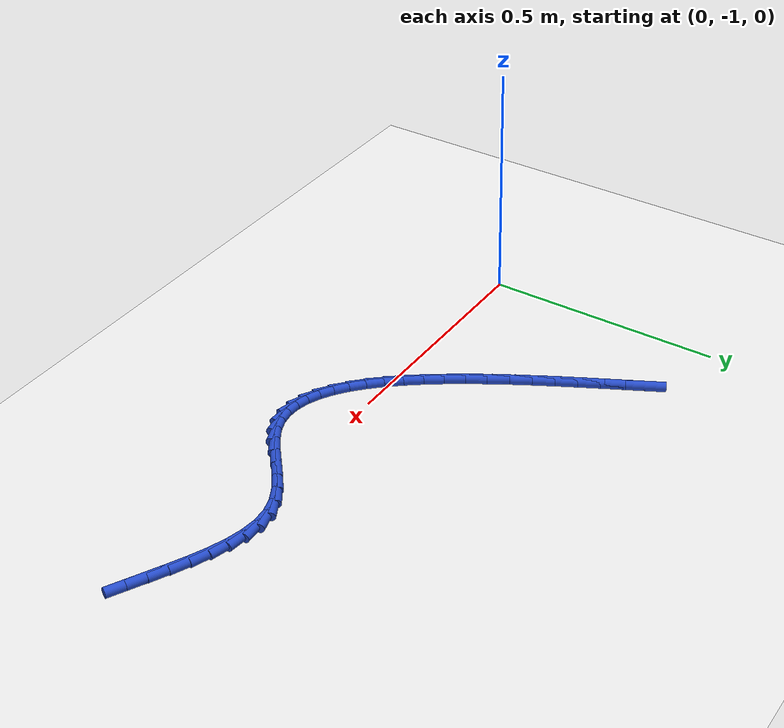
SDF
<sdf version="1.6">
 <world name="default">
  <model name="ground_plane">
   <static>1</static>
   <link name="link">
    <collision name="collision">
     <geometry><plane><normal>0 0 1</normal><size>100 100</size></plane></geometry>
     <surface><friction><ode><mu>100</mu><mu2>50</mu2></ode></friction></surface>
    </collision>
    <visual name="visual">
     <cast_shadows>0</cast_shadows>
     <geometry><plane><normal>0 0 1</normal><size>100 100</size></plane></geometry>
     <material>
      <script><uri>file://media/materials/scripts/gazebo.material</uri><name>Gazebo/WhiteGlow</name></script>
     </material>
    </visual>
   </link>
  </model>
  <model name="line">
   <link name="link_167">
    <pose>1.1373601821617456 -1.0560654046052782 0.01 0 1.57 -0.4908694466192165</pose>
    <collision name="collision">
     <geometry><cylinder><radius>0.01</radius><length>0.08</length></cylinder></geometry>
    </collision>
    <visual name="visual">
     <material>
      <script><name>Gazebo/Blue</name><uri>file://media/materials/scripts/gazebo.material</uri></script>
     </material>
     <geometry><cylinder><radius>0.01</radius><length>0.08</length></cylinder></geometry>
    </visual>
   </link>
   <link name="link_168">
    <pose>1.1040790828110867 -1.0382764748949014 0.01 0 1.57 -0.488861441878905</pose>
    <collision name="collision">
     <geometry><cylinder><radius>0.01</radius><length>0.08</length></cylinder></geometry>
    </collision>
    <visual name="visual">
     <material>
      <script><name>Gazebo/Blue</name><uri>file://media/materials/scripts/gazebo.material</uri></script>
     </material>
     <geometry><cylinder><radius>0.01</radius><length>0.08</length></cylinder></geometry>
    </visual>
   </link>
   <link name="link_169">
    <pose>1.070245193347285 -1.0202793307182478 0.01 0 1.57 -0.4698731065806249</pose>
    <collision name="collision">
     <geometry><cylinder><radius>0.01</radius><length>0.08</length></cylinder></geometry>
    </collision>
    <visual name="visual">
     <material>
      <script><name>Gazebo/Blue</name><uri>file://media/materials/scripts/gazebo.material</uri></script>
     </material>
     <geometry><cylinder><radius>0.01</radius><length>0.08</length></cylinder></geometry>
    </visual>
   </link>
   <link name="link_170">
    <pose>1.0360030288896354 -1.0028909448470966 0.01 0 1.57 -0.42765170814853537</pose>
    <collision name="collision">
     <geometry><cylinder><radius>0.01</radius><length>0.08</length></cylinder></geometry>
    </collision>
    <visual name="visual">
     <material>
      <script><name>Gazebo/Blue</name><uri>file://media/materials/scripts/gazebo.material</uri></script>
     </material>
     <geometry><cylinder><radius>0.01</radius><length>0.08</length></cylinder></geometry>
    </visual>
   </link>
   <link name="link_171">
    <pose>1.0016117151569217 -0.9872160078963601 0.01 0 1.57 -0.3587451610555444</pose>
    <collision name="collision">
     <geometry><cylinder><radius>0.01</radius><length>0.08</length></cylinder></geometry>
    </collision>
    <visual name="visual">
     <material>
      <script><name>Gazebo/Blue</name><uri>file://media/materials/scripts/gazebo.material</uri></script>
     </material>
     <geometry><cylinder><radius>0.01</radius><length>0.08</length></cylinder></geometry>
    </visual>
   </link>
   <link name="link_172">
    <pose>0.967331451840994 -0.9743619065772585 0.01 0 1.57 -0.2573914090754327</pose>
    <collision name="collision">
     <geometry><cylinder><radius>0.01</radius><length>0.08</length></cylinder></geometry>
    </collision>
    <visual name="visual">
     <material>
      <script><name>Gazebo/Blue</name><uri>file://media/materials/scripts/gazebo.material</uri></script>
     </material>
     <geometry><cylinder><radius>0.01</radius><length>0.08</length></cylinder></geometry>
    </visual>
   </link>
   <link name="link_173">
    <pose>0.9334224386337002 -0.965436027601009 0.01 0 1.57 -0.11637545998420795</pose>
    <collision name="collision">
     <geometry><cylinder><radius>0.01</radius><length>0.08</length></cylinder></geometry>
    </collision>
    <visual name="visual">
     <material>
      <script><name>Gazebo/Blue</name><uri>file://media/materials/scripts/gazebo.material</uri></script>
     </material>
     <geometry><cylinder><radius>0.01</radius><length>0.08</length></cylinder></geometry>
    </visual>
   </link>
   <link name="link_174">
    <pose>0.9001448752268921 -0.9615457576788313 0.01 0 1.57 0.06944695592646886</pose>
    <collision name="collision">
     <geometry><cylinder><radius>0.01</radius><length>0.08</length></cylinder></geometry>
    </collision>
    <visual name="visual">
     <material>
      <script><name>Gazebo/Blue</name><uri>file://media/materials/scripts/gazebo.material</uri></script>
     </material>
     <geometry><cylinder><radius>0.01</radius><length>0.08</length></cylinder></geometry>
    </visual>
   </link>
   <link name="link_175">
    <pose>0.8677589613124183 -0.9637984835219441 0.01 0 1.57 0.29439042052746484</pose>
    <collision name="collision">
     <geometry><cylinder><radius>0.01</radius><length>0.08</length></cylinder></geometry>
    </collision>
    <visual name="visual">
     <material>
      <script><name>Gazebo/Blue</name><uri>file://media/materials/scripts/gazebo.material</uri></script>
     </material>
     <geometry><cylinder><radius>0.01</radius><length>0.08</length></cylinder></geometry>
    </visual>
   </link>
   <link name="link_176">
    <pose>0.836520663929087 -0.973269950229138 0.01 0 1.57 0.4997179615709567</pose>
    <collision name="collision">
     <geometry><cylinder><radius>0.01</radius><length>0.08</length></cylinder></geometry>
    </collision>
    <visual name="visual">
     <material>
      <script><name>Gazebo/Blue</name><uri>file://media/materials/scripts/gazebo.material</uri></script>
     </material>
     <geometry><cylinder><radius>0.01</radius><length>0.08</length></cylinder></geometry>
    </visual>
   </link>
   <link name="link_177">
    <pose>0.806501683824841 -0.9896584021916245 0.01 0 1.57 0.6298794421928577</pose>
    <collision name="collision">
     <geometry><cylinder><radius>0.01</radius><length>0.08</length></cylinder></geometry>
    </collision>
    <visual name="visual">
     <material>
      <script><name>Gazebo/Blue</name><uri>file://media/materials/scripts/gazebo.material</uri></script>
     </material>
     <geometry><cylinder><radius>0.01</radius><length>0.08</length></cylinder></geometry>
    </visual>
   </link>
   <link name="link_178">
    <pose>0.7775222745736986 -1.010782365820884 0.01 0 1.57 0.696723598750937</pose>
    <collision name="collision">
     <geometry><cylinder><radius>0.01</radius><length>0.08</length></cylinder></geometry>
    </collision>
    <visual name="visual">
     <material>
      <script><name>Gazebo/Blue</name><uri>file://media/materials/scripts/gazebo.material</uri></script>
     </material>
     <geometry><cylinder><radius>0.01</radius><length>0.08</length></cylinder></geometry>
    </visual>
   </link>
   <link name="link_179">
    <pose>0.74938461260595 -1.0343252300696577 0.01 0 1.57 0.7102822752818109</pose>
    <collision name="collision">
     <geometry><cylinder><radius>0.01</radius><length>0.08</length></cylinder></geometry>
    </collision>
    <visual name="visual">
     <material>
      <script><name>Gazebo/Blue</name><uri>file://media/materials/scripts/gazebo.material</uri></script>
     </material>
     <geometry><cylinder><radius>0.01</radius><length>0.08</length></cylinder></geometry>
    </visual>
   </link>
   <link name="link_180">
    <pose>0.721890874351884 -1.0579703838906884 0.01 0 1.57 0.6700506092162694</pose>
    <collision name="collision">
     <geometry><cylinder><radius>0.01</radius><length>0.08</length></cylinder></geometry>
    </collision>
    <visual name="visual">
     <material>
      <script><name>Gazebo/Blue</name><uri>file://media/materials/scripts/gazebo.material</uri></script>
     </material>
     <geometry><cylinder><radius>0.01</radius><length>0.08</length></cylinder></geometry>
    </visual>
   </link>
   <link name="link_181">
    <pose>0.6948432362417899 -1.0794012162367177 0.01 0 1.57 0.5626644969681083</pose>
    <collision name="collision">
     <geometry><cylinder><radius>0.01</radius><length>0.08</length></cylinder></geometry>
    </collision>
    <visual name="visual">
     <material>
      <script><name>Gazebo/Blue</name><uri>file://media/materials/scripts/gazebo.material</uri></script>
     </material>
     <geometry><cylinder><radius>0.01</radius><length>0.08</length></cylinder></geometry>
    </visual>
   </link>
   <link name="link_182">
    <pose>0.6680440013029961 -1.0963026247270826 0.01 0 1.57 0.38239245909244723</pose>
    <collision name="collision">
     <geometry><cylinder><radius>0.01</radius><length>0.08</length></cylinder></geometry>
    </collision>
    <visual name="visual">
     <material>
      <script><name>Gazebo/Blue</name><uri>file://media/materials/scripts/gazebo.material</uri></script>
     </material>
     <geometry><cylinder><radius>0.01</radius><length>0.08</length></cylinder></geometry>
    </visual>
   </link>
   <link name="link_183">
    <pose>0.6413523830483219 -1.107037713581517 0.01 0 1.57 0.1741958417594164</pose>
    <collision name="collision">
     <geometry><cylinder><radius>0.01</radius><length>0.08</length></cylinder></geometry>
    </collision>
    <visual name="visual">
     <material>
      <script><name>Gazebo/Blue</name><uri>file://media/materials/scripts/gazebo.material</uri></script>
     </material>
     <geometry><cylinder><radius>0.01</radius><length>0.08</length></cylinder></geometry>
    </visual>
   </link>
   <link name="link_184">
    <pose>0.6147740542284715 -1.1117149529391073 0.01 0 1.57 -0.03762834936815597</pose>
    <collision name="collision">
     <geometry><cylinder><radius>0.01</radius><length>0.08</length></cylinder></geometry>
    </collision>
    <visual name="visual">
     <material>
      <script><name>Gazebo/Blue</name><uri>file://media/materials/scripts/gazebo.material</uri></script>
     </material>
     <geometry><cylinder><radius>0.01</radius><length>0.08</length></cylinder></geometry>
    </visual>
   </link>
   <link name="link_185">
    <pose>0.5883379250338882 -1.1107197352823583 0.01 0 1.57 -0.23477723373764603</pose>
    <collision name="collision">
     <geometry><cylinder><radius>0.01</radius><length>0.08</length></cylinder></geometry>
    </collision>
    <visual name="visual">
     <material>
      <script><name>Gazebo/Blue</name><uri>file://media/materials/scripts/gazebo.material</uri></script>
     </material>
     <geometry><cylinder><radius>0.01</radius><length>0.08</length></cylinder></geometry>
    </visual>
   </link>
   <link name="link_186">
    <pose>0.5620729056550139 -1.1044374530937777 0.01 0 1.57 -0.405320853872153</pose>
    <collision name="collision">
     <geometry><cylinder><radius>0.01</radius><length>0.08</length></cylinder></geometry>
    </collision>
    <visual name="visual">
     <material>
      <script><name>Gazebo/Blue</name><uri>file://media/materials/scripts/gazebo.material</uri></script>
     </material>
     <geometry><cylinder><radius>0.01</radius><length>0.08</length></cylinder></geometry>
    </visual>
   </link>
   <link name="link_187">
    <pose>0.5360079062822933 -1.093253498855872 0.01 0 1.57 -0.5460522725331932</pose>
    <collision name="collision">
     <geometry><cylinder><radius>0.01</radius><length>0.08</length></cylinder></geometry>
    </collision>
    <visual name="visual">
     <material>
      <script><name>Gazebo/Blue</name><uri>file://media/materials/scripts/gazebo.material</uri></script>
     </material>
     <geometry><cylinder><radius>0.01</radius><length>0.08</length></cylinder></geometry>
    </visual>
   </link>
   <link name="link_188">
    <pose>0.5101718371061686 -1.0775532650511472 0.01 0 1.57 -0.6595052843330653</pose>
    <collision name="collision">
     <geometry><cylinder><radius>0.01</radius><length>0.08</length></cylinder></geometry>
    </collision>
    <visual name="visual">
     <material>
      <script><name>Gazebo/Blue</name><uri>file://media/materials/scripts/gazebo.material</uri></script>
     </material>
     <geometry><cylinder><radius>0.01</radius><length>0.08</length></cylinder></geometry>
    </visual>
   </link>
   <link name="link_189">
    <pose>0.484593608317083 -1.0577221441621105 0.01 0 1.57 -0.7503208930905207</pose>
    <collision name="collision">
     <geometry><cylinder><radius>0.01</radius><length>0.08</length></cylinder></geometry>
    </collision>
    <visual name="visual">
     <material>
      <script><name>Gazebo/Blue</name><uri>file://media/materials/scripts/gazebo.material</uri></script>
     </material>
     <geometry><cylinder><radius>0.01</radius><length>0.08</length></cylinder></geometry>
    </visual>
   </link>
   <link name="link_190">
    <pose>0.4593021301054786 -1.034145528671267 0.01 0 1.57 -0.8231533674269303</pose>
    <collision name="collision">
     <geometry><cylinder><radius>0.01</radius><length>0.08</length></cylinder></geometry>
    </collision>
    <visual name="visual">
     <material>
      <script><name>Gazebo/Blue</name><uri>file://media/materials/scripts/gazebo.material</uri></script>
     </material>
     <geometry><cylinder><radius>0.01</radius><length>0.08</length></cylinder></geometry>
    </visual>
   </link>
   <link name="link_191">
    <pose>0.4343263126618002 -1.0072088110611257 0.01 0 1.57 -0.8819056783395248</pose>
    <collision name="collision">
     <geometry><cylinder><radius>0.01</radius><length>0.08</length></cylinder></geometry>
    </collision>
    <visual name="visual">
     <material>
      <script><name>Gazebo/Blue</name><uri>file://media/materials/scripts/gazebo.material</uri></script>
     </material>
     <geometry><cylinder><radius>0.01</radius><length>0.08</length></cylinder></geometry>
    </visual>
   </link>
   <link name="link_192">
    <pose>0.4096950661764896 -0.977297383814191 0.01 0 1.57 -0.9296188182990965</pose>
    <collision name="collision">
     <geometry><cylinder><radius>0.01</radius><length>0.08</length></cylinder></geometry>
    </collision>
    <visual name="visual">
     <material>
      <script><name>Gazebo/Blue</name><uri>file://media/materials/scripts/gazebo.material</uri></script>
     </material>
     <geometry><cylinder><radius>0.01</radius><length>0.08</length></cylinder></geometry>
    </visual>
   </link>
   <link name="link_193">
    <pose>0.3854373008399901 -0.9447966394129702 0.01 0 1.57 -0.9685889331371718</pose>
    <collision name="collision">
     <geometry><cylinder><radius>0.01</radius><length>0.08</length></cylinder></geometry>
    </collision>
    <visual name="visual">
     <material>
      <script><name>Gazebo/Blue</name><uri>file://media/materials/scripts/gazebo.material</uri></script>
     </material>
     <geometry><cylinder><radius>0.01</radius><length>0.08</length></cylinder></geometry>
    </visual>
   </link>
   <link name="link_194">
    <pose>0.3615819268427447 -0.9100919703399698 0.01 0 1.57 -1.0005276077970857</pose>
    <collision name="collision">
     <geometry><cylinder><radius>0.01</radius><length>0.08</length></cylinder></geometry>
    </collision>
    <visual name="visual">
     <material>
      <script><name>Gazebo/Blue</name><uri>file://media/materials/scripts/gazebo.material</uri></script>
     </material>
     <geometry><cylinder><radius>0.01</radius><length>0.08</length></cylinder></geometry>
    </visual>
   </link>
   <link name="link_195">
    <pose>0.3381578543751958 -0.8735687690776951 0.01 0 1.57 -1.0267031709810581</pose>
    <collision name="collision">
     <geometry><cylinder><radius>0.01</radius><length>0.08</length></cylinder></geometry>
    </collision>
    <visual name="visual">
     <material>
      <script><name>Gazebo/Blue</name><uri>file://media/materials/scripts/gazebo.material</uri></script>
     </material>
     <geometry><cylinder><radius>0.01</radius><length>0.08</length></cylinder></geometry>
    </visual>
   </link>
   <link name="link_196">
    <pose>0.3151939936277876 -0.8356124281086549 0.01 0 1.57 -1.048049457094557</pose>
    <collision name="collision">
     <geometry><cylinder><radius>0.01</radius><length>0.08</length></cylinder></geometry>
    </collision>
    <visual name="visual">
     <material>
      <script><name>Gazebo/Blue</name><uri>file://media/materials/scripts/gazebo.material</uri></script>
     </material>
     <geometry><cylinder><radius>0.01</radius><length>0.08</length></cylinder></geometry>
    </visual>
   </link>
   <link name="link_197">
    <pose>0.29271925479096256 -0.7966083399153546 0.01 0 1.57 -1.0652442706798981</pose>
    <collision name="collision">
     <geometry><cylinder><radius>0.01</radius><length>0.08</length></cylinder></geometry>
    </collision>
    <visual name="visual">
     <material>
      <script><name>Gazebo/Blue</name><uri>file://media/materials/scripts/gazebo.material</uri></script>
     </material>
     <geometry><cylinder><radius>0.01</radius><length>0.08</length></cylinder></geometry>
    </visual>
   </link>
   <link name="link_198">
    <pose>0.27076254805516375 -0.7569418969803003 0.01 0 1.57 -1.07876324481021</pose>
    <collision name="collision">
     <geometry><cylinder><radius>0.01</radius><length>0.08</length></cylinder></geometry>
    </collision>
    <visual name="visual">
     <material>
      <script><name>Gazebo/Blue</name><uri>file://media/materials/scripts/gazebo.material</uri></script>
     </material>
     <geometry><cylinder><radius>0.01</radius><length>0.08</length></cylinder></geometry>
    </visual>
   </link>
   <link name="link_199">
    <pose>0.24935278361083352 -0.7169984917859981 0.01 0 1.57 -1.0889141368154318</pose>
    <collision name="collision">
     <geometry><cylinder><radius>0.01</radius><length>0.08</length></cylinder></geometry>
    </collision>
    <visual name="visual">
     <material>
      <script><name>Gazebo/Blue</name><uri>file://media/materials/scripts/gazebo.material</uri></script>
     </material>
     <geometry><cylinder><radius>0.01</radius><length>0.08</length></cylinder></geometry>
    </visual>
   </link>
   <link name="link_200">
    <pose>0.22851887164841597 -0.6771635168149561 0.01 0 1.57 -1.0958547900141105</pose>
    <collision name="collision">
     <geometry><cylinder><radius>0.01</radius><length>0.08</length></cylinder></geometry>
    </collision>
    <visual name="visual">
     <material>
      <script><name>Gazebo/Blue</name><uri>file://media/materials/scripts/gazebo.material</uri></script>
     </material>
     <geometry><cylinder><radius>0.01</radius><length>0.08</length></cylinder></geometry>
    </visual>
   </link>
   <link name="link_201">
    <pose>0.20828972235835375 -0.6378223645496803 0.01 0 1.57 -1.0995958083464392</pose>
    <collision name="collision">
     <geometry><cylinder><radius>0.01</radius><length>0.08</length></cylinder></geometry>
    </collision>
    <visual name="visual">
     <material>
      <script><name>Gazebo/Blue</name><uri>file://media/materials/scripts/gazebo.material</uri></script>
     </material>
     <geometry><cylinder><radius>0.01</radius><length>0.08</length></cylinder></geometry>
    </visual>
   </link>
   <link name="link_202">
    <pose>0.18869424593108974 -0.5993604274726767 0.01 0 1.57 -1.0999863536730847</pose>
    <collision name="collision">
     <geometry><cylinder><radius>0.01</radius><length>0.08</length></cylinder></geometry>
    </collision>
    <visual name="visual">
     <material>
      <script><name>Gazebo/Blue</name><uri>file://media/materials/scripts/gazebo.material</uri></script>
     </material>
     <geometry><cylinder><radius>0.01</radius><length>0.08</length></cylinder></geometry>
    </visual>
   </link>
   <link name="link_203">
    <pose>0.1697613525570666 -0.5621630980664514 0.01 0 1.57 -1.0967788726478132</pose>
    <collision name="collision">
     <geometry><cylinder><radius>0.01</radius><length>0.08</length></cylinder></geometry>
    </collision>
    <visual name="visual">
     <material>
      <script><name>Gazebo/Blue</name><uri>file://media/materials/scripts/gazebo.material</uri></script>
     </material>
     <geometry><cylinder><radius>0.01</radius><length>0.08</length></cylinder></geometry>
    </visual>
   </link>
  </model>
 </world>
</sdf>
